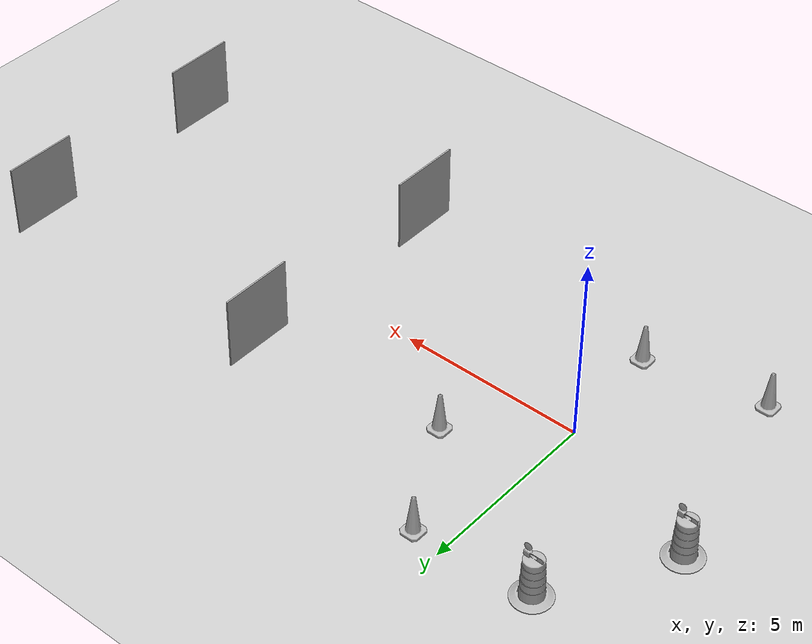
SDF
<sdf version="1.7">
 <world name="default">
  <light name="sun" type="directional">
   <pose>0 0 10 0 -0 0</pose>
   <diffuse>0.8 0.8 0.8 1</diffuse>
   <specular>0.2 0.2 0.2 1</specular>
   <attenuation>
    <range>1000</range>
    <constant>0.9</constant>
    <linear>0.01</linear>
    <quadratic>0.001</quadratic>
   </attenuation>
   <direction>-0.5 0.1 -0.9</direction>
   <spot><inner_angle>0</inner_angle><outer_angle>0</outer_angle><falloff>0</falloff></spot>
  </light>
  <model name="ground_plane">
   <static>1</static>
   <link name="link">
    <collision name="collision">
     <geometry><plane><normal>0 0 1</normal><size>100 100</size></plane></geometry>
     <surface><friction><ode><mu>100</mu><mu2>50</mu2></ode></friction></surface>
    </collision>
    <visual name="visual">
     <cast_shadows>0</cast_shadows>
     <geometry><plane><normal>0 0 1</normal><size>100 100</size></plane></geometry>
     <material>
      <script><uri>file://media/materials/scripts/gazebo.material</uri><name>Gazebo/Grey</name></script>
     </material>
    </visual>
   </link>
  </model>
  <gravity>0 0 -9.8</gravity>
  <magnetic_field>6e-06 2.3e-05 -4.2e-05</magnetic_field>
  <atmosphere type="adiabatic"/>
  <physics type="ode">
   <max_step_size>0.001</max_step_size>
   <real_time_factor>1</real_time_factor>
   <real_time_update_rate>1000</real_time_update_rate>
  </physics>
  <scene><ambient>0.4 0.4 0.4 1</ambient><background>0.7 0.7 0.7 1</background><shadows>1</shadows></scene>
  <audio><device>default</device></audio>
  <spherical_coordinates>
   <surface_model>EARTH_WGS84</surface_model>
   <latitude_deg>35.5371</latitude_deg>
   <longitude_deg>134.211</longitude_deg>
   <elevation>0</elevation>
   <heading_deg>0</heading_deg>
  </spherical_coordinates>
  <model name="Construction Barrel_0">
   <link name="link">
    <inertial>
     <pose>0 0 0.4 0 -0 0</pose>
     <mass>500</mass>
     <inertia><ixx>51.2096</ixx><iyy>51.2096</iyy><izz>25</izz><ixy>0</ixy><ixz>0</ixz><iyz>0</iyz></inertia>
    </inertial>
    <collision name="collision">
     <geometry><mesh><uri>model://construction_barrel/meshes/construction_barrel.dae</uri></mesh></geometry>
    </collision>
    <visual name="visual">
     <geometry><mesh><uri>model://construction_barrel/meshes/construction_barrel.dae</uri></mesh></geometry>
    </visual>
   </link>
   <pose>-4.09535 1.54214 -1e-06 4e-06 -2e-06 -2.8e-05</pose>
  </model>
  <model name="Construction Barrel_1">
   <link name="link">
    <inertial>
     <pose>0 0 0.4 0 -0 0</pose>
     <mass>500</mass>
     <inertia><ixx>51.2096</ixx><iyy>51.2096</iyy><izz>25</izz><ixy>0</ixy><ixz>0</ixz><iyz>0</iyz></inertia>
    </inertial>
    <collision name="collision">
     <geometry><mesh><uri>model://construction_barrel/meshes/construction_barrel.dae</uri></mesh></geometry>
    </collision>
    <visual name="visual">
     <geometry><mesh><uri>model://construction_barrel/meshes/construction_barrel.dae</uri></mesh></geometry>
    </visual>
   </link>
   <pose>-2.27915 4.59015 -0 0 -0 -2.9e-05</pose>
  </model>
  <model name="Construction Cone">
   <link name="link">
    <collision name="collision">
     <geometry>
      <mesh><scale>10 10 10</scale><uri>model://construction_cone/meshes/construction_cone.dae</uri></mesh>
     </geometry>
    </collision>
    <visual name="visual">
     <geometry>
      <mesh><scale>10 10 10</scale><uri>model://construction_cone/meshes/construction_cone.dae</uri></mesh>
     </geometry>
    </visual>
    <inertial>
     <inertia><ixx>1</ixx><ixy>0</ixy><ixz>0</ixz><iyy>1</iyy><iyz>0</iyz><izz>1</izz></inertia>
     <mass>1</mass>
    </inertial>
   </link>
   <pose>2.44019 1.95955 -0 -0 -0 -0</pose>
  </model>
  <model name="Construction Cone_0">
   <link name="link">
    <collision name="collision">
     <geometry>
      <mesh><scale>10 10 10</scale><uri>model://construction_cone/meshes/construction_cone.dae</uri></mesh>
     </geometry>
    </collision>
    <visual name="visual">
     <geometry>
      <mesh><scale>10 10 10</scale><uri>model://construction_cone/meshes/construction_cone.dae</uri></mesh>
     </geometry>
    </visual>
    <inertial>
     <inertia><ixx>1</ixx><ixy>0</ixy><ixz>0</ixz><iyy>1</iyy><iyz>0</iyz><izz>1</izz></inertia>
     <mass>1</mass>
    </inertial>
   </link>
   <pose>-2.95817 -3.63427 -9e-06 1e-06 -1e-06 0</pose>
  </model>
  <model name="Construction Cone_1">
   <link name="link">
    <collision name="collision">
     <geometry>
      <mesh><scale>10 10 10</scale><uri>model://construction_cone/meshes/construction_cone.dae</uri></mesh>
     </geometry>
    </collision>
    <visual name="visual">
     <geometry>
      <mesh><scale>10 10 10</scale><uri>model://construction_cone/meshes/construction_cone.dae</uri></mesh>
     </geometry>
    </visual>
    <inertial>
     <inertia><ixx>1</ixx><ixy>0</ixy><ixz>0</ixz><iyy>1</iyy><iyz>0</iyz><izz>1</izz></inertia>
     <mass>1</mass>
    </inertial>
   </link>
   <pose>0.832759 4.81881 -0 0 -0 0</pose>
  </model>
  <model name="Construction Cone_2">
   <link name="link">
    <collision name="collision">
     <geometry>
      <mesh><scale>10 10 10</scale><uri>model://construction_cone/meshes/construction_cone.dae</uri></mesh>
     </geometry>
    </collision>
    <visual name="visual">
     <geometry>
      <mesh><scale>10 10 10</scale><uri>model://construction_cone/meshes/construction_cone.dae</uri></mesh>
     </geometry>
    </visual>
    <inertial>
     <inertia><ixx>1</ixx><ixy>0</ixy><ixz>0</ixz><iyy>1</iyy><iyz>0</iyz><izz>1</izz></inertia>
     <mass>1</mass>
    </inertial>
   </link>
   <pose>0.231005 -3.0576 -8e-06 -5e-06 -0 -0</pose>
  </model>
  <model name="Marker2">
   <static>1</static>
   <link name="link">
    <visual name="visual">
     <geometry><mesh><uri>model://marker2/meshes/Marker2.dae</uri><scale>4 4 4</scale></mesh></geometry>
    </visual>
   </link>
   <pose>7.64549 2.54569 0 0 -0 0</pose>
  </model>
  <model name="Marker3">
   <static>1</static>
   <link name="link">
    <visual name="visual">
     <geometry><mesh><uri>model://marker3/meshes/Marker3.dae</uri><scale>4 4 4</scale></mesh></geometry>
    </visual>
   </link>
   <pose>7.49138 -3.52502 0 0 -0 0</pose>
  </model>
  <model name="Marker4">
   <static>1</static>
   <link name="link">
    <visual name="visual">
     <geometry><mesh><uri>model://marker4/meshes/Marker4.dae</uri><scale>4 4 4</scale></mesh></geometry>
    </visual>
   </link>
   <pose>15.3296 2.45646 0 0 -0 0</pose>
  </model>
  <model name="Marker5">
   <static>1</static>
   <link name="link">
    <visual name="visual">
     <geometry><mesh><uri>model://marker5/meshes/Marker5.dae</uri><scale>4 4 4</scale></mesh></geometry>
    </visual>
   </link>
   <pose>15.3225 -3.29934 0 0 -0 0</pose>
  </model>
 </world>
</sdf>
